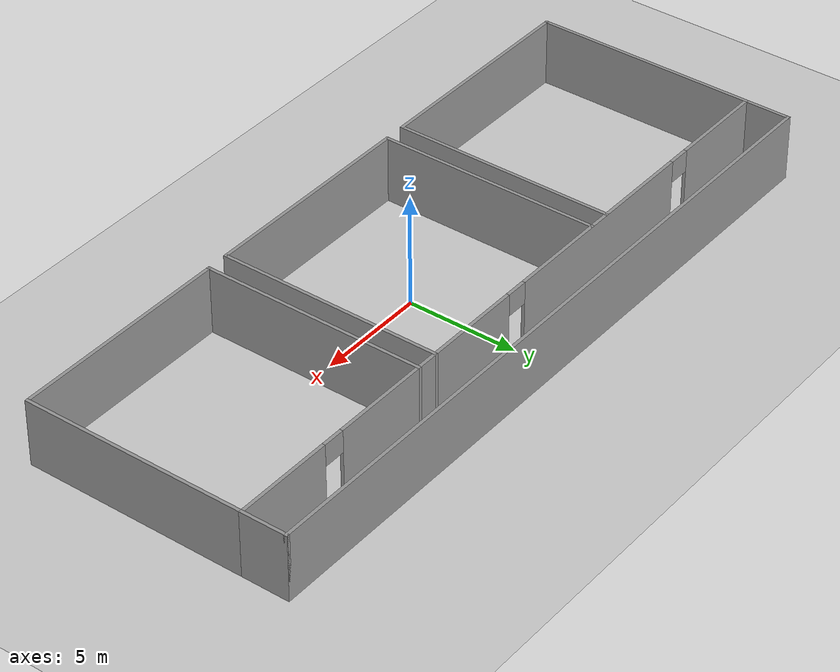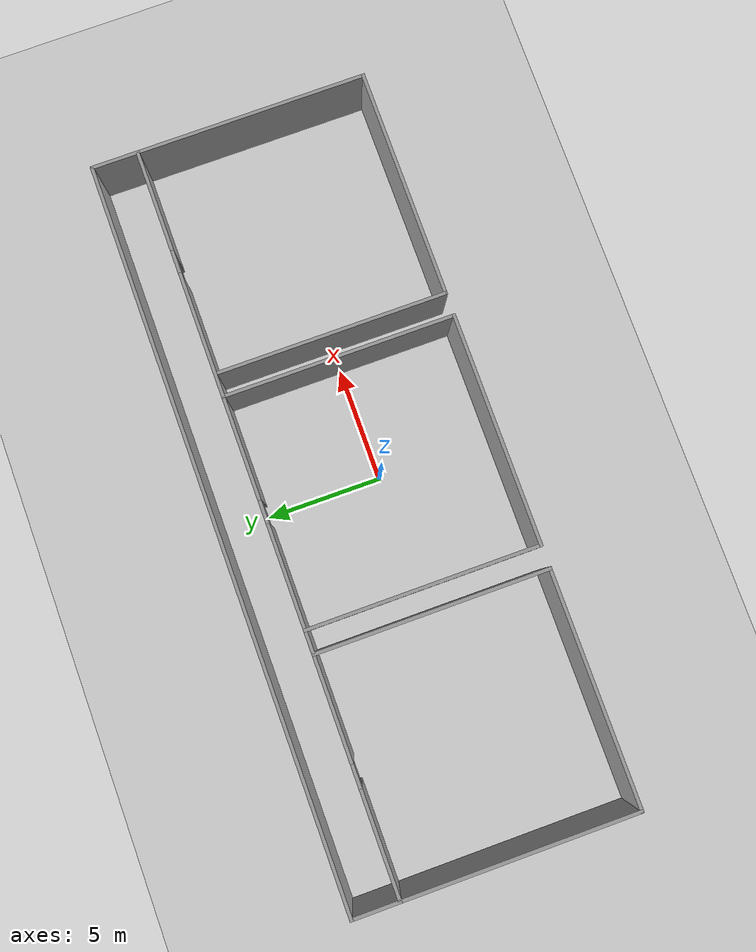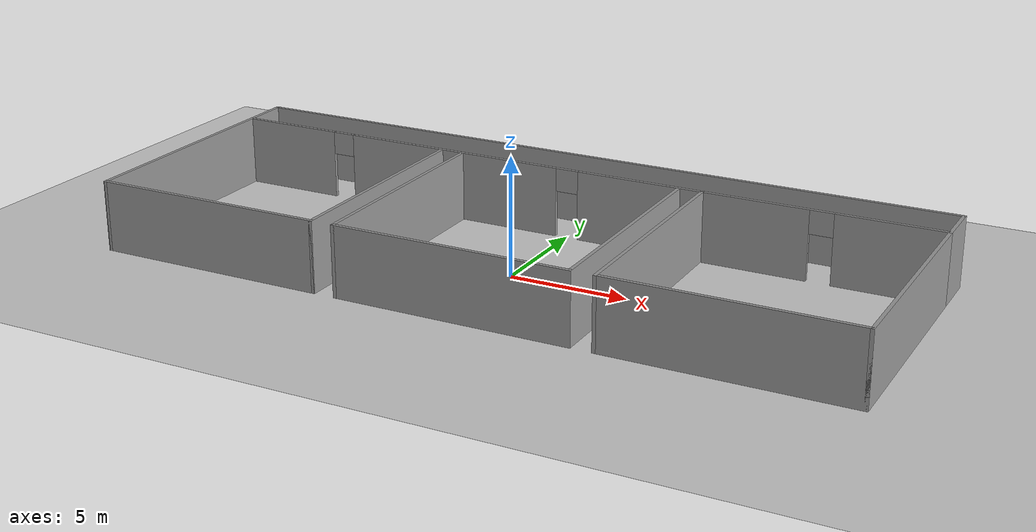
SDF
<sdf version="1.6">
 <world name="default">
  <light name="sun" type="directional">
   <pose>0 0 10 0 -0 0</pose>
   <diffuse>0.8 0.8 0.8 1</diffuse>
   <specular>0.2 0.2 0.2 1</specular>
   <attenuation>
    <range>1000</range>
    <constant>0.9</constant>
    <linear>0.01</linear>
    <quadratic>0.001</quadratic>
   </attenuation>
   <direction>-0.5 0.1 -0.9</direction>
  </light>
  <model name="ground_plane">
   <static>1</static>
   <link name="link">
    <collision name="collision">
     <geometry><plane><normal>0 0 1</normal><size>100 100</size></plane></geometry>
     <surface><friction><ode><mu>100</mu><mu2>50</mu2></ode></friction></surface>
    </collision>
    <visual name="visual">
     <cast_shadows>0</cast_shadows>
     <geometry><plane><normal>0 0 1</normal><size>100 100</size></plane></geometry>
     <material>
      <script><uri>file://media/materials/scripts/gazebo.material</uri><name>Gazebo/Grey</name></script>
     </material>
    </visual>
   </link>
  </model>
  <gravity>0 0 -9.8</gravity>
  <magnetic_field>6e-06 2.3e-05 -4.2e-05</magnetic_field>
  <atmosphere type="adiabatic"/>
  <physics name="default_physics" default="0" type="ode">
   <max_step_size>0.001</max_step_size>
   <real_time_factor>1</real_time_factor>
   <real_time_update_rate>1000</real_time_update_rate>
  </physics>
  <scene><ambient>0.4 0.4 0.4 1</ambient><background>0.7 0.7 0.7 1</background><shadows>1</shadows></scene>
  <spherical_coordinates>
   <surface_model>EARTH_WGS84</surface_model>
   <latitude_deg>0</latitude_deg>
   <longitude_deg>0</longitude_deg>
   <elevation>0</elevation>
   <heading_deg>0</heading_deg>
  </spherical_coordinates>
  <model name="Similar_Rooms">
   <pose>0 1 0 0 -0 0</pose>
   <link name="Wall_0">
    <collision name="Wall_0_Collision">
     <geometry><box><size>2.15 0.15 3</size></box></geometry>
     <pose>0 0 1.5 0 -0 0</pose>
    </collision>
    <visual name="Wall_0_Visual">
     <pose>0 0 1.5 0 -0 0</pose>
     <geometry><box><size>2.15 0.15 3</size></box></geometry>
     <material>
      <script><uri>file://media/materials/scripts/gazebo.material</uri><name>Gazebo/Grey</name></script>
      <ambient>1 1 1 1</ambient>
     </material>
     <meta><layer>0</layer></meta>
    </visual>
    <pose>-16 5 0 0 -0 1.5708</pose>
   </link>
   <link name="Wall_1">
    <collision name="Wall_1_Collision">
     <geometry><box><size>32.15 0.15 3</size></box></geometry>
     <pose>0 0 1.5 0 -0 0</pose>
    </collision>
    <visual name="Wall_1_Visual">
     <pose>0 0 1.5 0 -0 0</pose>
     <geometry><box><size>32.15 0.15 3</size></box></geometry>
     <material>
      <script><uri>file://media/materials/scripts/gazebo.material</uri><name>Gazebo/Grey</name></script>
      <ambient>1 1 1 1</ambient>
     </material>
     <meta><layer>0</layer></meta>
    </visual>
    <pose>0 6 0 0 -0 0</pose>
   </link>
   <link name="Wall_10">
    <collision name="Wall_10_Collision">
     <geometry><box><size>10.15 0.15 3</size></box></geometry>
     <pose>0 0 1.5 0 -0 0</pose>
    </collision>
    <visual name="Wall_10_Visual">
     <pose>0 0 1.5 0 -0 0</pose>
     <geometry><box><size>10.15 0.15 3</size></box></geometry>
     <material>
      <script><uri>file://media/materials/scripts/gazebo.material</uri><name>Gazebo/Grey</name></script>
      <ambient>1 1 1 1</ambient>
     </material>
     <meta><layer>0</layer></meta>
    </visual>
    <pose>16 -1 0 0 -0 1.5708</pose>
   </link>
   <link name="Wall_12">
    <collision name="Wall_12_Collision">
     <geometry><box><size>10.15 0.15 3</size></box></geometry>
     <pose>0 0 1.5 0 -0 0</pose>
    </collision>
    <visual name="Wall_12_Visual">
     <pose>0 0 1.5 0 -0 0</pose>
     <geometry><box><size>10.15 0.15 3</size></box></geometry>
     <material>
      <script><uri>file://media/materials/scripts/gazebo.material</uri><name>Gazebo/Grey</name></script>
      <ambient>1 1 1 1</ambient>
     </material>
     <meta><layer>0</layer></meta>
    </visual>
    <pose>-16 -1 0 0 0 -1.5708</pose>
   </link>
   <link name="Wall_13">
    <collision name="Wall_13_Collision">
     <geometry><box><size>10.15 0.15 3</size></box></geometry>
     <pose>0 0 1.5 0 -0 0</pose>
    </collision>
    <visual name="Wall_13_Visual">
     <pose>0 0 1.5 0 -0 0</pose>
     <geometry><box><size>10.15 0.15 3</size></box></geometry>
     <material>
      <script><uri>file://media/materials/scripts/gazebo.material</uri><name>Gazebo/Grey</name></script>
      <ambient>1 1 1 1</ambient>
     </material>
     <meta><layer>0</layer></meta>
    </visual>
    <pose>-11 -6 0 0 -0 0</pose>
   </link>
   <link name="Wall_14">
    <collision name="Wall_14_Collision">
     <geometry><box><size>10.15 0.15 3</size></box></geometry>
     <pose>0 0 1.5 0 -0 0</pose>
    </collision>
    <visual name="Wall_14_Visual">
     <pose>0 0 1.5 0 -0 0</pose>
     <geometry><box><size>10.15 0.15 3</size></box></geometry>
     <material>
      <script><uri>file://media/materials/scripts/gazebo.material</uri><name>Gazebo/Grey</name></script>
      <ambient>1 1 1 1</ambient>
     </material>
     <meta><layer>0</layer></meta>
    </visual>
    <pose>-6 -1 0 0 -0 1.5708</pose>
   </link>
   <link name="Wall_2">
    <collision name="Wall_2_Collision">
     <geometry><box><size>2.15 0.15 3</size></box></geometry>
     <pose>0 0 1.5 0 -0 0</pose>
    </collision>
    <visual name="Wall_2_Visual">
     <pose>0 0 1.5 0 -0 0</pose>
     <geometry><box><size>2.15 0.15 3</size></box></geometry>
     <material>
      <script><uri>file://media/materials/scripts/gazebo.material</uri><name>Gazebo/Grey</name></script>
      <ambient>1 1 1 1</ambient>
     </material>
     <meta><layer>0</layer></meta>
    </visual>
    <pose>16 5 0 0 0 -1.5708</pose>
   </link>
   <link name="Wall_26">
    <collision name="Wall_26_Collision">
     <geometry><box><size>10.15 0.15 3</size></box></geometry>
     <pose>0 0 1.5 0 -0 0</pose>
    </collision>
    <visual name="Wall_26_Visual">
     <pose>0 0 1.5 0 -0 0</pose>
     <geometry><box><size>10.15 0.15 3</size></box></geometry>
     <material>
      <script><uri>file://media/materials/scripts/gazebo.material</uri><name>Gazebo/Grey</name></script>
      <ambient>1 1 1 1</ambient>
     </material>
     <meta><layer>0</layer></meta>
    </visual>
    <pose>-5 -1 0 0 0 -1.5708</pose>
   </link>
   <link name="Wall_27">
    <collision name="Wall_27_Collision">
     <geometry><box><size>10.15 0.15 3</size></box></geometry>
     <pose>0 0 1.5 0 -0 0</pose>
    </collision>
    <visual name="Wall_27_Visual">
     <pose>0 0 1.5 0 -0 0</pose>
     <geometry><box><size>10.15 0.15 3</size></box></geometry>
     <material>
      <script><uri>file://media/materials/scripts/gazebo.material</uri><name>Gazebo/Grey</name></script>
      <ambient>1 1 1 1</ambient>
     </material>
     <meta><layer>0</layer></meta>
    </visual>
    <pose>0 -6 0 0 -0 0</pose>
   </link>
   <link name="Wall_28">
    <collision name="Wall_28_Collision">
     <geometry><box><size>10.15 0.15 3</size></box></geometry>
     <pose>0 0 1.5 0 -0 0</pose>
    </collision>
    <visual name="Wall_28_Visual">
     <pose>0 0 1.5 0 -0 0</pose>
     <geometry><box><size>10.15 0.15 3</size></box></geometry>
     <material>
      <script><uri>file://media/materials/scripts/gazebo.material</uri><name>Gazebo/Grey</name></script>
      <ambient>1 1 1 1</ambient>
     </material>
     <meta><layer>0</layer></meta>
    </visual>
    <pose>5 -1 0 0 -0 1.5708</pose>
   </link>
   <link name="Wall_3">
    <pose>0 4 0 0 -0 3.14159</pose>
    <visual name="Wall_3_Visual_0">
     <pose>-13.7897 0 1.5 0 -0 0</pose>
     <geometry><box><size>4.57055 0.15 3</size></box></geometry>
     <material>
      <script><uri>file://media/materials/scripts/gazebo.material</uri><name>Gazebo/Grey</name></script>
      <ambient>1 1 1 1</ambient>
     </material>
     <meta><layer>0</layer></meta>
    </visual>
    <collision name="Wall_3_Collision_0">
     <geometry><box><size>4.57055 0.15 3</size></box></geometry>
     <pose>-13.7897 0 1.5 0 -0 0</pose>
    </collision>
    <visual name="Wall_3_Visual_1">
     <pose>-5.50223 0 1.5 0 -0 0</pose>
     <geometry><box><size>10.0045 0.15 3</size></box></geometry>
     <material>
      <script><uri>file://media/materials/scripts/gazebo.material</uri><name>Gazebo/Grey</name></script>
      <ambient>1 1 1 1</ambient>
     </material>
     <meta><layer>0</layer></meta>
    </visual>
    <collision name="Wall_3_Collision_1">
     <geometry><box><size>10.0045 0.15 3</size></box></geometry>
     <pose>-5.50223 0 1.5 0 -0 0</pose>
    </collision>
    <visual name="Wall_3_Visual_2">
     <pose>5.5 0 1.5 0 -0 0</pose>
     <geometry><box><size>10 0.15 3</size></box></geometry>
     <material>
      <script><uri>file://media/materials/scripts/gazebo.material</uri><name>Gazebo/Grey</name></script>
      <ambient>1 1 1 1</ambient>
     </material>
     <meta><layer>0</layer></meta>
    </visual>
    <collision name="Wall_3_Collision_2">
     <geometry><box><size>10 0.15 3</size></box></geometry>
     <pose>5.5 0 1.5 0 -0 0</pose>
    </collision>
    <visual name="Wall_3_Visual_3">
     <pose>13.7875 0 1.5 0 -0 0</pose>
     <geometry><box><size>4.575 0.15 3</size></box></geometry>
     <material>
      <script><uri>file://media/materials/scripts/gazebo.material</uri><name>Gazebo/Grey</name></script>
      <ambient>1 1 1 1</ambient>
     </material>
     <meta><layer>0</layer></meta>
    </visual>
    <collision name="Wall_3_Collision_3">
     <geometry><box><size>4.575 0.15 3</size></box></geometry>
     <pose>13.7875 0 1.5 0 -0 0</pose>
    </collision>
    <visual name="Wall_3_Visual_4">
     <pose>-11.0045 0 2.5 0 -0 0</pose>
     <geometry><box><size>1 0.15 1</size></box></geometry>
     <material>
      <script><uri>file://media/materials/scripts/gazebo.material</uri><name>Gazebo/Grey</name></script>
      <ambient>1 1 1 1</ambient>
     </material>
     <meta><layer>0</layer></meta>
    </visual>
    <collision name="Wall_3_Collision_4">
     <geometry><box><size>1 0.15 1</size></box></geometry>
     <pose>-11.0045 0 2.5 0 -0 0</pose>
    </collision>
    <visual name="Wall_3_Visual_5">
     <pose>0 0 2.5 0 -0 0</pose>
     <geometry><box><size>1 0.15 1</size></box></geometry>
     <material>
      <script><uri>file://media/materials/scripts/gazebo.material</uri><name>Gazebo/Grey</name></script>
      <ambient>1 1 1 1</ambient>
     </material>
     <meta><layer>0</layer></meta>
    </visual>
    <collision name="Wall_3_Collision_5">
     <geometry><box><size>1 0.15 1</size></box></geometry>
     <pose>0 0 2.5 0 -0 0</pose>
    </collision>
    <visual name="Wall_3_Visual_6">
     <pose>11 0 2.5 0 -0 0</pose>
     <geometry><box><size>1 0.15 1</size></box></geometry>
     <material>
      <script><uri>file://media/materials/scripts/gazebo.material</uri><name>Gazebo/Grey</name></script>
      <ambient>1 1 1 1</ambient>
     </material>
     <meta><layer>0</layer></meta>
    </visual>
    <collision name="Wall_3_Collision_6">
     <geometry><box><size>1 0.15 1</size></box></geometry>
     <pose>11 0 2.5 0 -0 0</pose>
    </collision>
   </link>
   <link name="Wall_8">
    <collision name="Wall_8_Collision">
     <geometry><box><size>10.15 0.15 3</size></box></geometry>
     <pose>0 0 1.5 0 -0 0</pose>
    </collision>
    <visual name="Wall_8_Visual">
     <pose>0 0 1.5 0 -0 0</pose>
     <geometry><box><size>10.15 0.15 3</size></box></geometry>
     <material>
      <script><uri>file://media/materials/scripts/gazebo.material</uri><name>Gazebo/Grey</name></script>
      <ambient>1 1 1 1</ambient>
     </material>
     <meta><layer>0</layer></meta>
    </visual>
    <pose>6 -1 0 0 0 -1.5708</pose>
   </link>
   <link name="Wall_9">
    <collision name="Wall_9_Collision">
     <geometry><box><size>10.15 0.15 3</size></box></geometry>
     <pose>0 0 1.5 0 -0 0</pose>
    </collision>
    <visual name="Wall_9_Visual">
     <pose>0 0 1.5 0 -0 0</pose>
     <geometry><box><size>10.15 0.15 3</size></box></geometry>
     <material>
      <script><uri>file://media/materials/scripts/gazebo.material</uri><name>Gazebo/Grey</name></script>
      <ambient>1 1 1 1</ambient>
     </material>
     <meta><layer>0</layer></meta>
    </visual>
    <pose>11 -6 0 0 -0 0</pose>
   </link>
   <static>1</static>
  </model>
 </world>
</sdf>
